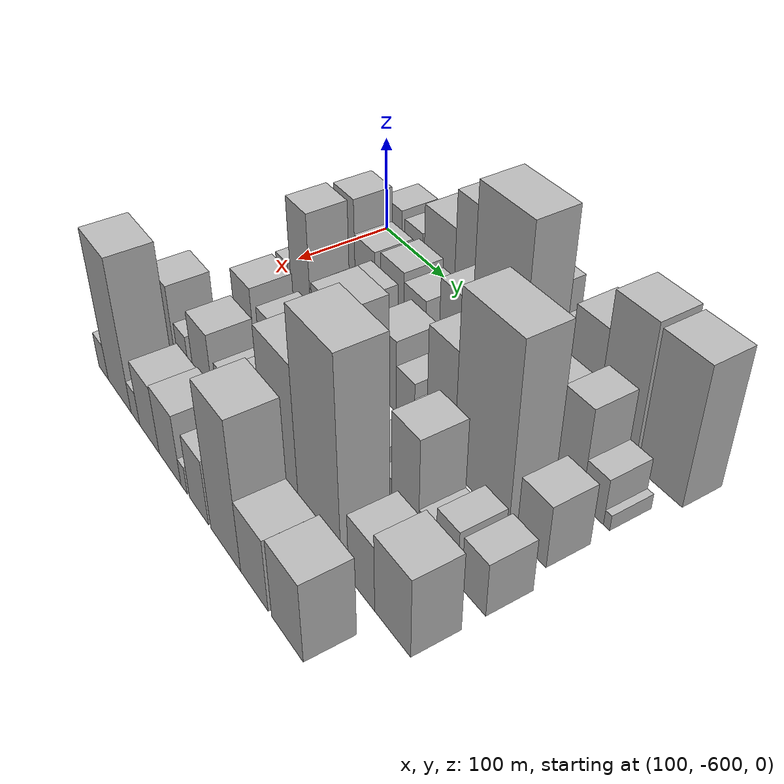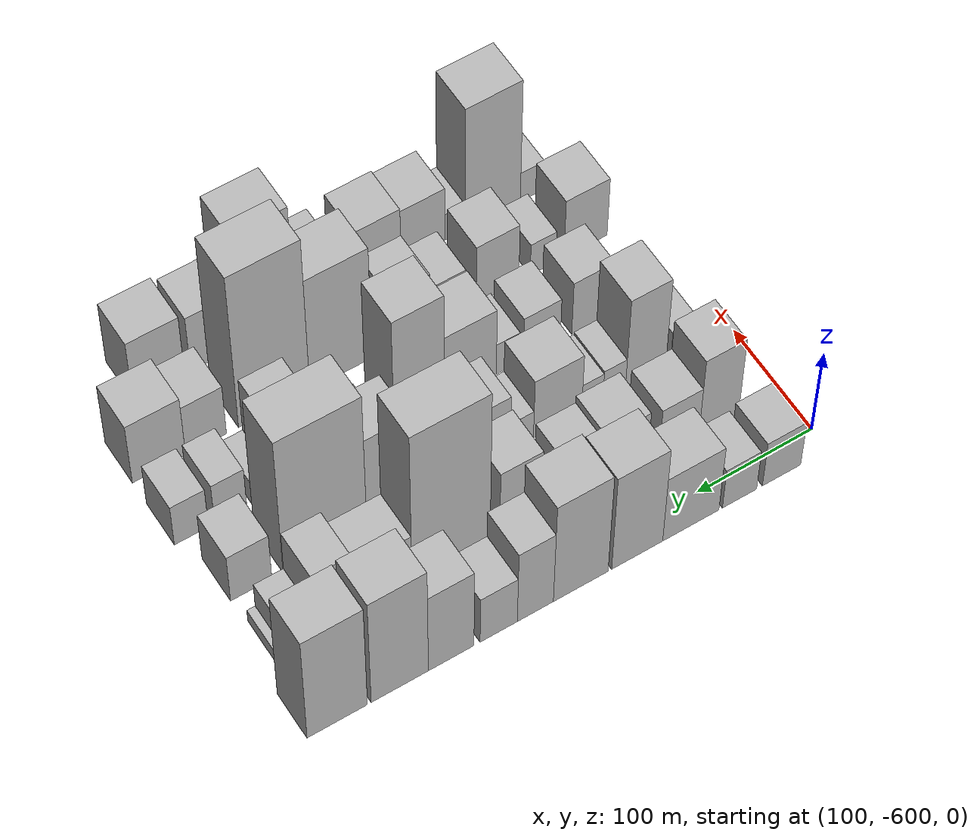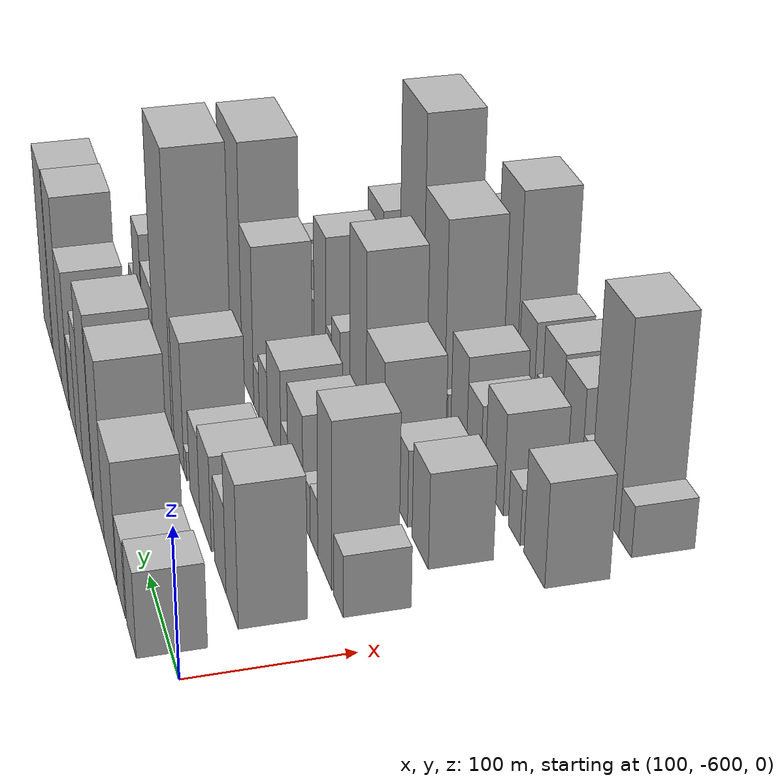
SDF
<sdf version="1.6">
 <world name="default">
  <model name="building_11">
   <static>1</static>
   <pose>100.0000 -559.1597 0 0.000000 0.000000 0.000000</pose>
   <link name="link">
    <pose>0 0 28.50 0 0 0</pose>
    <collision name="collision"><geometry><box><size>40.0000 33.1722 57.0000</size></box></geometry></collision>
    <visual name="visual">
     <cast_shadows>0</cast_shadows>
     <geometry><box><size>40.0000 33.1722 57.0000</size></box></geometry>
     <material>
      <script>
       <uri>model://HANNAS_wall/materials/scripts</uri>
       <uri>model://HANNAS_wall/materials/textures</uri>
       <name>vrc/HANNAS_wall</name>
      </script>
     </material>
    </visual>
   </link>
  </model>
  <model name="building_12">
   <static>1</static>
   <pose>100.0000 -522.8531 0 0.000000 0.000000 0.000000</pose>
   <link name="link">
    <pose>0 0 25.50 0 0 0</pose>
    <collision name="collision"><geometry><box><size>40.0000 29.4410 51.0000</size></box></geometry></collision>
    <visual name="visual">
     <cast_shadows>0</cast_shadows>
     <geometry><box><size>40.0000 29.4410 51.0000</size></box></geometry>
     <material>
      <script>
       <uri>model://HANNAS_wall/materials/scripts</uri>
       <uri>model://HANNAS_wall/materials/textures</uri>
       <name>vrc/HANNAS_wall</name>
      </script>
     </material>
    </visual>
   </link>
  </model>
  <model name="building_13">
   <static>1</static>
   <pose>100.0000 -481.1601 0 0.000000 0.000000 0.000000</pose>
   <link name="link">
    <pose>0 0 42.00 0 0 0</pose>
    <collision name="collision"><geometry><box><size>40.0000 47.9450 84.0000</size></box></geometry></collision>
    <visual name="visual">
     <cast_shadows>0</cast_shadows>
     <geometry><box><size>40.0000 47.9450 84.0000</size></box></geometry>
     <material>
      <script>
       <uri>model://HANNAS_wall/materials/scripts</uri>
       <uri>model://HANNAS_wall/materials/textures</uri>
       <name>vrc/HANNAS_wall</name>
      </script>
     </material>
    </visual>
   </link>
  </model>
  <model name="building_14">
   <static>1</static>
   <pose>100.0000 -435.6512 0 0.000000 0.000000 0.000000</pose>
   <link name="link">
    <pose>0 0 61.50 0 0 0</pose>
    <collision name="collision"><geometry><box><size>40.0000 43.0728 123.0000</size></box></geometry></collision>
    <visual name="visual">
     <cast_shadows>0</cast_shadows>
     <geometry><box><size>40.0000 43.0728 123.0000</size></box></geometry>
     <material>
      <script>
       <uri>model://HANNAS_wall/materials/scripts</uri>
       <uri>model://HANNAS_wall/materials/textures</uri>
       <name>vrc/HANNAS_wall</name>
      </script>
     </material>
    </visual>
   </link>
  </model>
  <model name="building_15">
   <static>1</static>
   <pose>100.0000 -388.2523 0 0.000000 0.000000 0.000000</pose>
   <link name="link">
    <pose>0 0 64.50 0 0 0</pose>
    <collision name="collision"><geometry><box><size>40.0000 45.7249 129.0000</size></box></geometry></collision>
    <visual name="visual">
     <cast_shadows>0</cast_shadows>
     <geometry><box><size>40.0000 45.7249 129.0000</size></box></geometry>
     <material>
      <script>
       <uri>model://HANNAS_wall/materials/scripts</uri>
       <uri>model://HANNAS_wall/materials/textures</uri>
       <name>vrc/HANNAS_wall</name>
      </script>
     </material>
    </visual>
   </link>
  </model>
  <model name="building_16">
   <static>1</static>
   <pose>100.0000 -350.4406 0 0.000000 0.000000 0.000000</pose>
   <link name="link">
    <pose>0 0 46.50 0 0 0</pose>
    <collision name="collision"><geometry><box><size>40.0000 29.8985 93.0000</size></box></geometry></collision>
    <visual name="visual">
     <cast_shadows>0</cast_shadows>
     <geometry><box><size>40.0000 29.8985 93.0000</size></box></geometry>
     <material>
      <script>
       <uri>model://HANNAS_wall/materials/scripts</uri>
       <uri>model://HANNAS_wall/materials/textures</uri>
       <name>vrc/HANNAS_wall</name>
      </script>
     </material>
    </visual>
   </link>
  </model>
  <model name="building_17">
   <static>1</static>
   <pose>100.0000 -320.1890 0 0.000000 0.000000 0.000000</pose>
   <link name="link">
    <pose>0 0 30.00 0 0 0</pose>
    <collision name="collision"><geometry><box><size>40.0000 30.6047 60.0000</size></box></geometry></collision>
    <visual name="visual">
     <cast_shadows>0</cast_shadows>
     <geometry><box><size>40.0000 30.6047 60.0000</size></box></geometry>
     <material>
      <script>
       <uri>model://HANNAS_wall/materials/scripts</uri>
       <uri>model://HANNAS_wall/materials/textures</uri>
       <name>vrc/HANNAS_wall</name>
      </script>
     </material>
    </visual>
   </link>
  </model>
  <model name="building_18">
   <static>1</static>
   <pose>100.0000 -281.3210 0 0.000000 0.000000 0.000000</pose>
   <link name="link">
    <pose>0 0 51.00 0 0 0</pose>
    <collision name="collision"><geometry><box><size>40.0000 37.1313 102.0000</size></box></geometry></collision>
    <visual name="visual">
     <cast_shadows>0</cast_shadows>
     <geometry><box><size>40.0000 37.1313 102.0000</size></box></geometry>
     <material>
      <script>
       <uri>model://HANNAS_wall/materials/scripts</uri>
       <uri>model://HANNAS_wall/materials/textures</uri>
       <name>vrc/HANNAS_wall</name>
      </script>
     </material>
    </visual>
   </link>
  </model>
  <model name="building_19">
   <static>1</static>
   <pose>100.0000 -239.6339 0 0.000000 0.000000 0.000000</pose>
   <link name="link">
    <pose>0 0 69.00 0 0 0</pose>
    <collision name="collision"><geometry><box><size>40.0000 46.2429 138.0000</size></box></geometry></collision>
    <visual name="visual">
     <cast_shadows>0</cast_shadows>
     <geometry><box><size>40.0000 46.2429 138.0000</size></box></geometry>
     <material>
      <script>
       <uri>model://HANNAS_wall/materials/scripts</uri>
       <uri>model://HANNAS_wall/materials/textures</uri>
       <name>vrc/HANNAS_wall</name>
      </script>
     </material>
    </visual>
   </link>
  </model>
  <model name="building_20">
   <static>1</static>
   <pose>100.0000 -189.3822 0 0.000000 0.000000 0.000000</pose>
   <link name="link">
    <pose>0 0 67.50 0 0 0</pose>
    <collision name="collision"><geometry><box><size>40.0000 48.2603 135.0000</size></box></geometry></collision>
    <visual name="visual">
     <cast_shadows>0</cast_shadows>
     <geometry><box><size>40.0000 48.2603 135.0000</size></box></geometry>
     <material>
      <script>
       <uri>model://HANNAS_wall/materials/scripts</uri>
       <uri>model://HANNAS_wall/materials/textures</uri>
       <name>vrc/HANNAS_wall</name>
      </script>
     </material>
    </visual>
   </link>
  </model>
  <model name="building_67">
   <static>1</static>
   <pose>160.0000 -545.8637 0 0.000000 0.000000 0.000000</pose>
   <link name="link">
    <pose>0 0 48.00 0 0 0</pose>
    <collision name="collision"><geometry><box><size>40.0000 34.5554 96.0000</size></box></geometry></collision>
    <visual name="visual">
     <cast_shadows>0</cast_shadows>
     <geometry><box><size>40.0000 34.5554 96.0000</size></box></geometry>
     <material>
      <script>
       <uri>model://HANNAS_wall/materials/scripts</uri>
       <uri>model://HANNAS_wall/materials/textures</uri>
       <name>vrc/HANNAS_wall</name>
      </script>
     </material>
    </visual>
   </link>
  </model>
  <model name="building_68">
   <static>1</static>
   <pose>160.0000 -511.3760 0 0.000000 0.000000 0.000000</pose>
   <link name="link">
    <pose>0 0 30.00 0 0 0</pose>
    <collision name="collision"><geometry><box><size>40.0000 34.4201 60.0000</size></box></geometry></collision>
    <visual name="visual">
     <cast_shadows>0</cast_shadows>
     <geometry><box><size>40.0000 34.4201 60.0000</size></box></geometry>
     <material>
      <script>
       <uri>model://HANNAS_wall/materials/scripts</uri>
       <uri>model://HANNAS_wall/materials/textures</uri>
       <name>vrc/HANNAS_wall</name>
      </script>
     </material>
    </visual>
   </link>
  </model>
  <model name="building_69">
   <static>1</static>
   <pose>160.0000 -465.6435 0 0.000000 0.000000 0.000000</pose>
   <link name="link">
    <pose>0 0 33.00 0 0 0</pose>
    <collision name="collision"><geometry><box><size>40.0000 37.0449 66.0000</size></box></geometry></collision>
    <visual name="visual">
     <cast_shadows>0</cast_shadows>
     <geometry><box><size>40.0000 37.0449 66.0000</size></box></geometry>
     <material>
      <script>
       <uri>model://HANNAS_wall/materials/scripts</uri>
       <uri>model://HANNAS_wall/materials/textures</uri>
       <name>vrc/HANNAS_wall</name>
      </script>
     </material>
    </visual>
   </link>
  </model>
  <model name="building_70">
   <static>1</static>
   <pose>160.0000 -430.4712 0 0.000000 0.000000 0.000000</pose>
   <link name="link">
    <pose>0 0 28.50 0 0 0</pose>
    <collision name="collision"><geometry><box><size>40.0000 33.2997 57.0000</size></box></geometry></collision>
    <visual name="visual">
     <cast_shadows>0</cast_shadows>
     <geometry><box><size>40.0000 33.2997 57.0000</size></box></geometry>
     <material>
      <script>
       <uri>model://HANNAS_wall/materials/scripts</uri>
       <uri>model://HANNAS_wall/materials/textures</uri>
       <name>vrc/HANNAS_wall</name>
      </script>
     </material>
    </visual>
   </link>
  </model>
  <model name="building_71">
   <static>1</static>
   <pose>160.0000 -398.9516 0 0.000000 0.000000 0.000000</pose>
   <link name="link">
    <pose>0 0 10.50 0 0 0</pose>
    <collision name="collision"><geometry><box><size>40.0000 9.7394 21.0000</size></box></geometry></collision>
    <visual name="visual">
     <cast_shadows>0</cast_shadows>
     <geometry><box><size>40.0000 9.7394 21.0000</size></box></geometry>
     <material>
      <script>
       <uri>model://HANNAS_wall/materials/scripts</uri>
       <uri>model://HANNAS_wall/materials/textures</uri>
       <name>vrc/HANNAS_wall</name>
      </script>
     </material>
    </visual>
   </link>
  </model>
  <model name="building_72">
   <static>1</static>
   <pose>160.0000 -376.5164 0 0.000000 0.000000 0.000000</pose>
   <link name="link">
    <pose>0 0 46.50 0 0 0</pose>
    <collision name="collision"><geometry><box><size>40.0000 35.1311 93.0000</size></box></geometry></collision>
    <visual name="visual">
     <cast_shadows>0</cast_shadows>
     <geometry><box><size>40.0000 35.1311 93.0000</size></box></geometry>
     <material>
      <script>
       <uri>model://HANNAS_wall/materials/scripts</uri>
       <uri>model://HANNAS_wall/materials/textures</uri>
       <name>vrc/HANNAS_wall</name>
      </script>
     </material>
    </visual>
   </link>
  </model>
  <model name="building_73">
   <static>1</static>
   <pose>160.0000 -318.7499 0 0.000000 0.000000 0.000000</pose>
   <link name="link">
    <pose>0 0 102.00 0 0 0</pose>
    <collision name="collision"><geometry><box><size>40.0000 64.4019 204.0000</size></box></geometry></collision>
    <visual name="visual">
     <cast_shadows>0</cast_shadows>
     <geometry><box><size>40.0000 64.4019 204.0000</size></box></geometry>
     <material>
      <script>
       <uri>model://HANNAS_wall/materials/scripts</uri>
       <uri>model://HANNAS_wall/materials/textures</uri>
       <name>vrc/HANNAS_wall</name>
      </script>
     </material>
    </visual>
   </link>
  </model>
  <model name="building_74">
   <static>1</static>
   <pose>160.0000 -264.3984 0 0.000000 0.000000 0.000000</pose>
   <link name="link">
    <pose>0 0 37.50 0 0 0</pose>
    <collision name="collision"><geometry><box><size>40.0000 44.3011 75.0000</size></box></geometry></collision>
    <visual name="visual">
     <cast_shadows>0</cast_shadows>
     <geometry><box><size>40.0000 44.3011 75.0000</size></box></geometry>
     <material>
      <script>
       <uri>model://HANNAS_wall/materials/scripts</uri>
       <uri>model://HANNAS_wall/materials/textures</uri>
       <name>vrc/HANNAS_wall</name>
      </script>
     </material>
    </visual>
   </link>
  </model>
  <model name="building_75">
   <static>1</static>
   <pose>160.0000 -223.4162 0 0.000000 0.000000 0.000000</pose>
   <link name="link">
    <pose>0 0 46.50 0 0 0</pose>
    <collision name="collision"><geometry><box><size>40.0000 31.6633 93.0000</size></box></geometry></collision>
    <visual name="visual">
     <cast_shadows>0</cast_shadows>
     <geometry><box><size>40.0000 31.6633 93.0000</size></box></geometry>
     <material>
      <script>
       <uri>model://HANNAS_wall/materials/scripts</uri>
       <uri>model://HANNAS_wall/materials/textures</uri>
       <name>vrc/HANNAS_wall</name>
      </script>
     </material>
    </visual>
   </link>
  </model>
  <model name="building_76">
   <static>1</static>
   <pose>160.0000 -195.5586 0 0.000000 0.000000 0.000000</pose>
   <link name="link">
    <pose>0 0 22.50 0 0 0</pose>
    <collision name="collision"><geometry><box><size>40.0000 24.0520 45.0000</size></box></geometry></collision>
    <visual name="visual">
     <cast_shadows>0</cast_shadows>
     <geometry><box><size>40.0000 24.0520 45.0000</size></box></geometry>
     <material>
      <script>
       <uri>model://HANNAS_wall/materials/scripts</uri>
       <uri>model://HANNAS_wall/materials/textures</uri>
       <name>vrc/HANNAS_wall</name>
      </script>
     </material>
    </visual>
   </link>
  </model>
  <model name="building_77">
   <static>1</static>
   <pose>160.0000 -180.1423 0 0.000000 0.000000 0.000000</pose>
   <link name="link">
    <pose>0 0 7.50 0 0 0</pose>
    <collision name="collision"><geometry><box><size>40.0000 6.7806 15.0000</size></box></geometry></collision>
    <visual name="visual">
     <cast_shadows>0</cast_shadows>
     <geometry><box><size>40.0000 6.7806 15.0000</size></box></geometry>
     <material>
      <script>
       <uri>model://HANNAS_wall/materials/scripts</uri>
       <uri>model://HANNAS_wall/materials/textures</uri>
       <name>vrc/HANNAS_wall</name>
      </script>
     </material>
    </visual>
   </link>
  </model>
  <model name="building_122">
   <static>1</static>
   <pose>220.0000 -555.2893 0 0.000000 0.000000 0.000000</pose>
   <link name="link">
    <pose>0 0 21.00 0 0 0</pose>
    <collision name="collision"><geometry><box><size>40.0000 22.9541 42.0000</size></box></geometry></collision>
    <visual name="visual">
     <cast_shadows>0</cast_shadows>
     <geometry><box><size>40.0000 22.9541 42.0000</size></box></geometry>
     <material>
      <script>
       <uri>model://HANNAS_wall/materials/scripts</uri>
       <uri>model://HANNAS_wall/materials/textures</uri>
       <name>vrc/HANNAS_wall</name>
      </script>
     </material>
    </visual>
   </link>
  </model>
  <model name="building_123">
   <static>1</static>
   <pose>220.0000 -522.3479 0 0.000000 0.000000 0.000000</pose>
   <link name="link">
    <pose>0 0 57.00 0 0 0</pose>
    <collision name="collision"><geometry><box><size>40.0000 34.9288 114.0000</size></box></geometry></collision>
    <visual name="visual">
     <cast_shadows>0</cast_shadows>
     <geometry><box><size>40.0000 34.9288 114.0000</size></box></geometry>
     <material>
      <script>
       <uri>model://HANNAS_wall/materials/scripts</uri>
       <uri>model://HANNAS_wall/materials/textures</uri>
       <name>vrc/HANNAS_wall</name>
      </script>
     </material>
    </visual>
   </link>
  </model>
  <model name="building_124">
   <static>1</static>
   <pose>220.0000 -495.1035 0 0.000000 0.000000 0.000000</pose>
   <link name="link">
    <pose>0 0 19.50 0 0 0</pose>
    <collision name="collision"><geometry><box><size>40.0000 19.5599 39.0000</size></box></geometry></collision>
    <visual name="visual">
     <cast_shadows>0</cast_shadows>
     <geometry><box><size>40.0000 19.5599 39.0000</size></box></geometry>
     <material>
      <script>
       <uri>model://HANNAS_wall/materials/scripts</uri>
       <uri>model://HANNAS_wall/materials/textures</uri>
       <name>vrc/HANNAS_wall</name>
      </script>
     </material>
    </visual>
   </link>
  </model>
  <model name="building_125">
   <static>1</static>
   <pose>220.0000 -476.1760 0 0.000000 0.000000 0.000000</pose>
   <link name="link">
    <pose>0 0 18.00 0 0 0</pose>
    <collision name="collision"><geometry><box><size>40.0000 18.2951 36.0000</size></box></geometry></collision>
    <visual name="visual">
     <cast_shadows>0</cast_shadows>
     <geometry><box><size>40.0000 18.2951 36.0000</size></box></geometry>
     <material>
      <script>
       <uri>model://HANNAS_wall/materials/scripts</uri>
       <uri>model://HANNAS_wall/materials/textures</uri>
       <name>vrc/HANNAS_wall</name>
      </script>
     </material>
    </visual>
   </link>
  </model>
  <model name="building_126">
   <static>1</static>
   <pose>220.0000 -446.3758 0 0.000000 0.000000 0.000000</pose>
   <link name="link">
    <pose>0 0 37.50 0 0 0</pose>
    <collision name="collision"><geometry><box><size>40.0000 41.3053 75.0000</size></box></geometry></collision>
    <visual name="visual">
     <cast_shadows>0</cast_shadows>
     <geometry><box><size>40.0000 41.3053 75.0000</size></box></geometry>
     <material>
      <script>
       <uri>model://HANNAS_wall/materials/scripts</uri>
       <uri>model://HANNAS_wall/materials/textures</uri>
       <name>vrc/HANNAS_wall</name>
      </script>
     </material>
    </visual>
   </link>
  </model>
  <model name="building_127">
   <static>1</static>
   <pose>220.0000 -415.9411 0 0.000000 0.000000 0.000000</pose>
   <link name="link">
    <pose>0 0 18.00 0 0 0</pose>
    <collision name="collision"><geometry><box><size>40.0000 19.5641 36.0000</size></box></geometry></collision>
    <visual name="visual">
     <cast_shadows>0</cast_shadows>
     <geometry><box><size>40.0000 19.5641 36.0000</size></box></geometry>
     <material>
      <script>
       <uri>model://HANNAS_wall/materials/scripts</uri>
       <uri>model://HANNAS_wall/materials/textures</uri>
       <name>vrc/HANNAS_wall</name>
      </script>
     </material>
    </visual>
   </link>
  </model>
  <model name="building_128">
   <static>1</static>
   <pose>220.0000 -386.1745 0 0.000000 0.000000 0.000000</pose>
   <link name="link">
    <pose>0 0 36.00 0 0 0</pose>
    <collision name="collision"><geometry><box><size>40.0000 39.9691 72.0000</size></box></geometry></collision>
    <visual name="visual">
     <cast_shadows>0</cast_shadows>
     <geometry><box><size>40.0000 39.9691 72.0000</size></box></geometry>
     <material>
      <script>
       <uri>model://HANNAS_wall/materials/scripts</uri>
       <uri>model://HANNAS_wall/materials/textures</uri>
       <name>vrc/HANNAS_wall</name>
      </script>
     </material>
    </visual>
   </link>
  </model>
  <model name="building_129">
   <static>1</static>
   <pose>220.0000 -353.1273 0 0.000000 0.000000 0.000000</pose>
   <link name="link">
    <pose>0 0 24.00 0 0 0</pose>
    <collision name="collision"><geometry><box><size>40.0000 26.1254 48.0000</size></box></geometry></collision>
    <visual name="visual">
     <cast_shadows>0</cast_shadows>
     <geometry><box><size>40.0000 26.1254 48.0000</size></box></geometry>
     <material>
      <script>
       <uri>model://HANNAS_wall/materials/scripts</uri>
       <uri>model://HANNAS_wall/materials/textures</uri>
       <name>vrc/HANNAS_wall</name>
      </script>
     </material>
    </visual>
   </link>
  </model>
  <model name="building_130">
   <static>1</static>
   <pose>220.0000 -331.5957 0 0.000000 0.000000 0.000000</pose>
   <link name="link">
    <pose>0 0 16.50 0 0 0</pose>
    <collision name="collision"><geometry><box><size>40.0000 16.9378 33.0000</size></box></geometry></collision>
    <visual name="visual">
     <cast_shadows>0</cast_shadows>
     <geometry><box><size>40.0000 16.9378 33.0000</size></box></geometry>
     <material>
      <script>
       <uri>model://HANNAS_wall/materials/scripts</uri>
       <uri>model://HANNAS_wall/materials/textures</uri>
       <name>vrc/HANNAS_wall</name>
      </script>
     </material>
    </visual>
   </link>
  </model>
  <model name="building_131">
   <static>1</static>
   <pose>220.0000 -304.5180 0 0.000000 0.000000 0.000000</pose>
   <link name="link">
    <pose>0 0 58.50 0 0 0</pose>
    <collision name="collision"><geometry><box><size>40.0000 37.2175 117.0000</size></box></geometry></collision>
    <visual name="visual">
     <cast_shadows>0</cast_shadows>
     <geometry><box><size>40.0000 37.2175 117.0000</size></box></geometry>
     <material>
      <script>
       <uri>model://HANNAS_wall/materials/scripts</uri>
       <uri>model://HANNAS_wall/materials/textures</uri>
       <name>vrc/HANNAS_wall</name>
      </script>
     </material>
    </visual>
   </link>
  </model>
  <model name="building_132">
   <static>1</static>
   <pose>220.0000 -251.4537 0 0.000000 0.000000 0.000000</pose>
   <link name="link">
    <pose>0 0 87.00 0 0 0</pose>
    <collision name="collision"><geometry><box><size>40.0000 68.9112 174.0000</size></box></geometry></collision>
    <visual name="visual">
     <cast_shadows>0</cast_shadows>
     <geometry><box><size>40.0000 68.9112 174.0000</size></box></geometry>
     <material>
      <script>
       <uri>model://HANNAS_wall/materials/scripts</uri>
       <uri>model://HANNAS_wall/materials/textures</uri>
       <name>vrc/HANNAS_wall</name>
      </script>
     </material>
    </visual>
   </link>
  </model>
  <model name="building_133">
   <static>1</static>
   <pose>220.0000 -191.2462 0 0.000000 0.000000 0.000000</pose>
   <link name="link">
    <pose>0 0 30.00 0 0 0</pose>
    <collision name="collision"><geometry><box><size>40.0000 33.5037 60.0000</size></box></geometry></collision>
    <visual name="visual">
     <cast_shadows>0</cast_shadows>
     <geometry><box><size>40.0000 33.5037 60.0000</size></box></geometry>
     <material>
      <script>
       <uri>model://HANNAS_wall/materials/scripts</uri>
       <uri>model://HANNAS_wall/materials/textures</uri>
       <name>vrc/HANNAS_wall</name>
      </script>
     </material>
    </visual>
   </link>
  </model>
  <model name="building_179">
   <static>1</static>
   <pose>280.0000 -515.1549 0 0.000000 0.000000 0.000000</pose>
   <link name="link">
    <pose>0 0 33.00 0 0 0</pose>
    <collision name="collision"><geometry><box><size>40.0000 35.4104 66.0000</size></box></geometry></collision>
    <visual name="visual">
     <cast_shadows>0</cast_shadows>
     <geometry><box><size>40.0000 35.4104 66.0000</size></box></geometry>
     <material>
      <script>
       <uri>model://HANNAS_wall/materials/scripts</uri>
       <uri>model://HANNAS_wall/materials/textures</uri>
       <name>vrc/HANNAS_wall</name>
      </script>
     </material>
    </visual>
   </link>
  </model>
  <model name="building_180">
   <static>1</static>
   <pose>280.0000 -471.4115 0 0.000000 0.000000 0.000000</pose>
   <link name="link">
    <pose>0 0 27.00 0 0 0</pose>
    <collision name="collision"><geometry><box><size>40.0000 32.0764 54.0000</size></box></geometry></collision>
    <visual name="visual">
     <cast_shadows>0</cast_shadows>
     <geometry><box><size>40.0000 32.0764 54.0000</size></box></geometry>
     <material>
      <script>
       <uri>model://HANNAS_wall/materials/scripts</uri>
       <uri>model://HANNAS_wall/materials/textures</uri>
       <name>vrc/HANNAS_wall</name>
      </script>
     </material>
    </visual>
   </link>
  </model>
  <model name="building_181">
   <static>1</static>
   <pose>280.0000 -442.2535 0 0.000000 0.000000 0.000000</pose>
   <link name="link">
    <pose>0 0 19.50 0 0 0</pose>
    <collision name="collision"><geometry><box><size>40.0000 20.2397 39.0000</size></box></geometry></collision>
    <visual name="visual">
     <cast_shadows>0</cast_shadows>
     <geometry><box><size>40.0000 20.2397 39.0000</size></box></geometry>
     <material>
      <script>
       <uri>model://HANNAS_wall/materials/scripts</uri>
       <uri>model://HANNAS_wall/materials/textures</uri>
       <name>vrc/HANNAS_wall</name>
      </script>
     </material>
    </visual>
   </link>
  </model>
  <model name="building_182">
   <static>1</static>
   <pose>280.0000 -409.9814 0 0.000000 0.000000 0.000000</pose>
   <link name="link">
    <pose>0 0 42.00 0 0 0</pose>
    <collision name="collision"><geometry><box><size>40.0000 44.3043 84.0000</size></box></geometry></collision>
    <visual name="visual">
     <cast_shadows>0</cast_shadows>
     <geometry><box><size>40.0000 44.3043 84.0000</size></box></geometry>
     <material>
      <script>
       <uri>model://HANNAS_wall/materials/scripts</uri>
       <uri>model://HANNAS_wall/materials/textures</uri>
       <name>vrc/HANNAS_wall</name>
      </script>
     </material>
    </visual>
   </link>
  </model>
  <model name="building_183">
   <static>1</static>
   <pose>280.0000 -366.4460 0 0.000000 0.000000 0.000000</pose>
   <link name="link">
    <pose>0 0 69.00 0 0 0</pose>
    <collision name="collision"><geometry><box><size>40.0000 42.7665 138.0000</size></box></geometry></collision>
    <visual name="visual">
     <cast_shadows>0</cast_shadows>
     <geometry><box><size>40.0000 42.7665 138.0000</size></box></geometry>
     <material>
      <script>
       <uri>model://HANNAS_wall/materials/scripts</uri>
       <uri>model://HANNAS_wall/materials/textures</uri>
       <name>vrc/HANNAS_wall</name>
      </script>
     </material>
    </visual>
   </link>
  </model>
  <model name="building_184">
   <static>1</static>
   <pose>280.0000 -331.6238 0 0.000000 0.000000 0.000000</pose>
   <link name="link">
    <pose>0 0 7.50 0 0 0</pose>
    <collision name="collision"><geometry><box><size>40.0000 6.8779 15.0000</size></box></geometry></collision>
    <visual name="visual">
     <cast_shadows>0</cast_shadows>
     <geometry><box><size>40.0000 6.8779 15.0000</size></box></geometry>
     <material>
      <script>
       <uri>model://HANNAS_wall/materials/scripts</uri>
       <uri>model://HANNAS_wall/materials/textures</uri>
       <name>vrc/HANNAS_wall</name>
      </script>
     </material>
    </visual>
   </link>
  </model>
  <model name="building_185">
   <static>1</static>
   <pose>280.0000 -307.0592 0 0.000000 0.000000 0.000000</pose>
   <link name="link">
    <pose>0 0 22.50 0 0 0</pose>
    <collision name="collision"><geometry><box><size>40.0000 24.2513 45.0000</size></box></geometry></collision>
    <visual name="visual">
     <cast_shadows>0</cast_shadows>
     <geometry><box><size>40.0000 24.2513 45.0000</size></box></geometry>
     <material>
      <script>
       <uri>model://HANNAS_wall/materials/scripts</uri>
       <uri>model://HANNAS_wall/materials/textures</uri>
       <name>vrc/HANNAS_wall</name>
      </script>
     </material>
    </visual>
   </link>
  </model>
  <model name="building_186">
   <static>1</static>
   <pose>280.0000 -287.2792 0 0.000000 0.000000 0.000000</pose>
   <link name="link">
    <pose>0 0 15.00 0 0 0</pose>
    <collision name="collision"><geometry><box><size>40.0000 15.3089 30.0000</size></box></geometry></collision>
    <visual name="visual">
     <cast_shadows>0</cast_shadows>
     <geometry><box><size>40.0000 15.3089 30.0000</size></box></geometry>
     <material>
      <script>
       <uri>model://HANNAS_wall/materials/scripts</uri>
       <uri>model://HANNAS_wall/materials/textures</uri>
       <name>vrc/HANNAS_wall</name>
      </script>
     </material>
    </visual>
   </link>
  </model>
  <model name="building_187">
   <static>1</static>
   <pose>280.0000 -261.8778 0 0.000000 0.000000 0.000000</pose>
   <link name="link">
    <pose>0 0 48.00 0 0 0</pose>
    <collision name="collision"><geometry><box><size>40.0000 35.4940 96.0000</size></box></geometry></collision>
    <visual name="visual">
     <cast_shadows>0</cast_shadows>
     <geometry><box><size>40.0000 35.4940 96.0000</size></box></geometry>
     <material>
      <script>
       <uri>model://HANNAS_wall/materials/scripts</uri>
       <uri>model://HANNAS_wall/materials/textures</uri>
       <name>vrc/HANNAS_wall</name>
      </script>
     </material>
    </visual>
   </link>
  </model>
  <model name="building_188">
   <static>1</static>
   <pose>280.0000 -235.3799 0 0.000000 0.000000 0.000000</pose>
   <link name="link">
    <pose>0 0 15.00 0 0 0</pose>
    <collision name="collision"><geometry><box><size>40.0000 17.5018 30.0000</size></box></geometry></collision>
    <visual name="visual">
     <cast_shadows>0</cast_shadows>
     <geometry><box><size>40.0000 17.5018 30.0000</size></box></geometry>
     <material>
      <script>
       <uri>model://HANNAS_wall/materials/scripts</uri>
       <uri>model://HANNAS_wall/materials/textures</uri>
       <name>vrc/HANNAS_wall</name>
      </script>
     </material>
    </visual>
   </link>
  </model>
  <model name="building_189">
   <static>1</static>
   <pose>280.0000 -209.4340 0 0.000000 0.000000 0.000000</pose>
   <link name="link">
    <pose>0 0 25.50 0 0 0</pose>
    <collision name="collision"><geometry><box><size>40.0000 26.3899 51.0000</size></box></geometry></collision>
    <visual name="visual">
     <cast_shadows>0</cast_shadows>
     <geometry><box><size>40.0000 26.3899 51.0000</size></box></geometry>
     <material>
      <script>
       <uri>model://HANNAS_wall/materials/scripts</uri>
       <uri>model://HANNAS_wall/materials/textures</uri>
       <name>vrc/HANNAS_wall</name>
      </script>
     </material>
    </visual>
   </link>
  </model>
  <model name="building_190">
   <static>1</static>
   <pose>280.0000 -177.3579 0 0.000000 0.000000 0.000000</pose>
   <link name="link">
    <pose>0 0 25.50 0 0 0</pose>
    <collision name="collision"><geometry><box><size>40.0000 27.7624 51.0000</size></box></geometry></collision>
    <visual name="visual">
     <cast_shadows>0</cast_shadows>
     <geometry><box><size>40.0000 27.7624 51.0000</size></box></geometry>
     <material>
      <script>
       <uri>model://HANNAS_wall/materials/scripts</uri>
       <uri>model://HANNAS_wall/materials/textures</uri>
       <name>vrc/HANNAS_wall</name>
      </script>
     </material>
    </visual>
   </link>
  </model>
  <model name="building_237">
   <static>1</static>
   <pose>340.0000 -548.6157 0 0.000000 0.000000 0.000000</pose>
   <link name="link">
    <pose>0 0 36.00 0 0 0</pose>
    <collision name="collision"><geometry><box><size>40.0000 38.1792 72.0000</size></box></geometry></collision>
    <visual name="visual">
     <cast_shadows>0</cast_shadows>
     <geometry><box><size>40.0000 38.1792 72.0000</size></box></geometry>
     <material>
      <script>
       <uri>model://HANNAS_wall/materials/scripts</uri>
       <uri>model://HANNAS_wall/materials/textures</uri>
       <name>vrc/HANNAS_wall</name>
      </script>
     </material>
    </visual>
   </link>
  </model>
  <model name="building_238">
   <static>1</static>
   <pose>340.0000 -511.1821 0 0.000000 0.000000 0.000000</pose>
   <link name="link">
    <pose>0 0 19.50 0 0 0</pose>
    <collision name="collision"><geometry><box><size>40.0000 22.6880 39.0000</size></box></geometry></collision>
    <visual name="visual">
     <cast_shadows>0</cast_shadows>
     <geometry><box><size>40.0000 22.6880 39.0000</size></box></geometry>
     <material>
      <script>
       <uri>model://HANNAS_wall/materials/scripts</uri>
       <uri>model://HANNAS_wall/materials/textures</uri>
       <name>vrc/HANNAS_wall</name>
      </script>
     </material>
    </visual>
   </link>
  </model>
  <model name="building_239">
   <static>1</static>
   <pose>340.0000 -471.2604 0 0.000000 0.000000 0.000000</pose>
   <link name="link">
    <pose>0 0 36.00 0 0 0</pose>
    <collision name="collision"><geometry><box><size>40.0000 37.1554 72.0000</size></box></geometry></collision>
    <visual name="visual">
     <cast_shadows>0</cast_shadows>
     <geometry><box><size>40.0000 37.1554 72.0000</size></box></geometry>
     <material>
      <script>
       <uri>model://HANNAS_wall/materials/scripts</uri>
       <uri>model://HANNAS_wall/materials/textures</uri>
       <name>vrc/HANNAS_wall</name>
      </script>
     </material>
    </visual>
   </link>
  </model>
  <model name="building_240">
   <static>1</static>
   <pose>340.0000 -428.4277 0 0.000000 0.000000 0.000000</pose>
   <link name="link">
    <pose>0 0 25.50 0 0 0</pose>
    <collision name="collision"><geometry><box><size>40.0000 30.5100 51.0000</size></box></geometry></collision>
    <visual name="visual">
     <cast_shadows>0</cast_shadows>
     <geometry><box><size>40.0000 30.5100 51.0000</size></box></geometry>
     <material>
      <script>
       <uri>model://HANNAS_wall/materials/scripts</uri>
       <uri>model://HANNAS_wall/materials/textures</uri>
       <name>vrc/HANNAS_wall</name>
      </script>
     </material>
    </visual>
   </link>
  </model>
  <model name="building_241">
   <static>1</static>
   <pose>340.0000 -395.6206 0 0.000000 0.000000 0.000000</pose>
   <link name="link">
    <pose>0 0 34.50 0 0 0</pose>
    <collision name="collision"><geometry><box><size>40.0000 35.1043 69.0000</size></box></geometry></collision>
    <visual name="visual">
     <cast_shadows>0</cast_shadows>
     <geometry><box><size>40.0000 35.1043 69.0000</size></box></geometry>
     <material>
      <script>
       <uri>model://HANNAS_wall/materials/scripts</uri>
       <uri>model://HANNAS_wall/materials/textures</uri>
       <name>vrc/HANNAS_wall</name>
      </script>
     </material>
    </visual>
   </link>
  </model>
  <model name="building_242">
   <static>1</static>
   <pose>340.0000 -367.0390 0 0.000000 0.000000 0.000000</pose>
   <link name="link">
    <pose>0 0 9.00 0 0 0</pose>
    <collision name="collision"><geometry><box><size>40.0000 8.0589 18.0000</size></box></geometry></collision>
    <visual name="visual">
     <cast_shadows>0</cast_shadows>
     <geometry><box><size>40.0000 8.0589 18.0000</size></box></geometry>
     <material>
      <script>
       <uri>model://HANNAS_wall/materials/scripts</uri>
       <uri>model://HANNAS_wall/materials/textures</uri>
       <name>vrc/HANNAS_wall</name>
      </script>
     </material>
    </visual>
   </link>
  </model>
  <model name="building_243">
   <static>1</static>
   <pose>340.0000 -336.7149 0 0.000000 0.000000 0.000000</pose>
   <link name="link">
    <pose>0 0 70.50 0 0 0</pose>
    <collision name="collision"><geometry><box><size>40.0000 52.5893 141.0000</size></box></geometry></collision>
    <visual name="visual">
     <cast_shadows>0</cast_shadows>
     <geometry><box><size>40.0000 52.5893 141.0000</size></box></geometry>
     <material>
      <script>
       <uri>model://HANNAS_wall/materials/scripts</uri>
       <uri>model://HANNAS_wall/materials/textures</uri>
       <name>vrc/HANNAS_wall</name>
      </script>
     </material>
    </visual>
   </link>
  </model>
  <model name="building_244">
   <static>1</static>
   <pose>340.0000 -280.5516 0 0.000000 0.000000 0.000000</pose>
   <link name="link">
    <pose>0 0 96.00 0 0 0</pose>
    <collision name="collision"><geometry><box><size>40.0000 59.7372 192.0000</size></box></geometry></collision>
    <visual name="visual">
     <cast_shadows>0</cast_shadows>
     <geometry><box><size>40.0000 59.7372 192.0000</size></box></geometry>
     <material>
      <script>
       <uri>model://HANNAS_wall/materials/scripts</uri>
       <uri>model://HANNAS_wall/materials/textures</uri>
       <name>vrc/HANNAS_wall</name>
      </script>
     </material>
    </visual>
   </link>
  </model>
  <model name="building_245">
   <static>1</static>
   <pose>340.0000 -223.8176 0 0.000000 0.000000 0.000000</pose>
   <link name="link">
    <pose>0 0 31.50 0 0 0</pose>
    <collision name="collision"><geometry><box><size>40.0000 33.7309 63.0000</size></box></geometry></collision>
    <visual name="visual">
     <cast_shadows>0</cast_shadows>
     <geometry><box><size>40.0000 33.7309 63.0000</size></box></geometry>
     <material>
      <script>
       <uri>model://HANNAS_wall/materials/scripts</uri>
       <uri>model://HANNAS_wall/materials/textures</uri>
       <name>vrc/HANNAS_wall</name>
      </script>
     </material>
    </visual>
   </link>
  </model>
  <model name="building_246">
   <static>1</static>
   <pose>340.0000 -185.0694 0 0.000000 0.000000 0.000000</pose>
   <link name="link">
    <pose>0 0 37.50 0 0 0</pose>
    <collision name="collision"><geometry><box><size>40.0000 43.7655 75.0000</size></box></geometry></collision>
    <visual name="visual">
     <cast_shadows>0</cast_shadows>
     <geometry><box><size>40.0000 43.7655 75.0000</size></box></geometry>
     <material>
      <script>
       <uri>model://HANNAS_wall/materials/scripts</uri>
       <uri>model://HANNAS_wall/materials/textures</uri>
       <name>vrc/HANNAS_wall</name>
      </script>
     </material>
    </visual>
   </link>
  </model>
  <model name="building_287">
   <static>1</static>
   <pose>400.0000 -539.9291 0 0.000000 0.000000 0.000000</pose>
   <link name="link">
    <pose>0 0 18.00 0 0 0</pose>
    <collision name="collision"><geometry><box><size>40.0000 21.0735 36.0000</size></box></geometry></collision>
    <visual name="visual">
     <cast_shadows>0</cast_shadows>
     <geometry><box><size>40.0000 21.0735 36.0000</size></box></geometry>
     <material>
      <script>
       <uri>model://HANNAS_wall/materials/scripts</uri>
       <uri>model://HANNAS_wall/materials/textures</uri>
       <name>vrc/HANNAS_wall</name>
      </script>
     </material>
    </visual>
   </link>
  </model>
  <model name="building_288">
   <static>1</static>
   <pose>400.0000 -504.9818 0 0.000000 0.000000 0.000000</pose>
   <link name="link">
    <pose>0 0 75.00 0 0 0</pose>
    <collision name="collision"><geometry><box><size>40.0000 48.8210 150.0000</size></box></geometry></collision>
    <visual name="visual">
     <cast_shadows>0</cast_shadows>
     <geometry><box><size>40.0000 48.8210 150.0000</size></box></geometry>
     <material>
      <script>
       <uri>model://HANNAS_wall/materials/scripts</uri>
       <uri>model://HANNAS_wall/materials/textures</uri>
       <name>vrc/HANNAS_wall</name>
      </script>
     </material>
    </visual>
   </link>
  </model>
  <model name="building_289">
   <static>1</static>
   <pose>400.0000 -471.7902 0 0.000000 0.000000 0.000000</pose>
   <link name="link">
    <pose>0 0 16.50 0 0 0</pose>
    <collision name="collision"><geometry><box><size>40.0000 17.5622 33.0000</size></box></geometry></collision>
    <visual name="visual">
     <cast_shadows>0</cast_shadows>
     <geometry><box><size>40.0000 17.5622 33.0000</size></box></geometry>
     <material>
      <script>
       <uri>model://HANNAS_wall/materials/scripts</uri>
       <uri>model://HANNAS_wall/materials/textures</uri>
       <name>vrc/HANNAS_wall</name>
      </script>
     </material>
    </visual>
   </link>
  </model>
  <model name="building_290">
   <static>1</static>
   <pose>400.0000 -443.8399 0 0.000000 0.000000 0.000000</pose>
   <link name="link">
    <pose>0 0 33.00 0 0 0</pose>
    <collision name="collision"><geometry><box><size>40.0000 38.3384 66.0000</size></box></geometry></collision>
    <visual name="visual">
     <cast_shadows>0</cast_shadows>
     <geometry><box><size>40.0000 38.3384 66.0000</size></box></geometry>
     <material>
      <script>
       <uri>model://HANNAS_wall/materials/scripts</uri>
       <uri>model://HANNAS_wall/materials/textures</uri>
       <name>vrc/HANNAS_wall</name>
      </script>
     </material>
    </visual>
   </link>
  </model>
  <model name="building_291">
   <static>1</static>
   <pose>400.0000 -404.6809 0 0.000000 0.000000 0.000000</pose>
   <link name="link">
    <pose>0 0 34.50 0 0 0</pose>
    <collision name="collision"><geometry><box><size>40.0000 39.9795 69.0000</size></box></geometry></collision>
    <visual name="visual">
     <cast_shadows>0</cast_shadows>
     <geometry><box><size>40.0000 39.9795 69.0000</size></box></geometry>
     <material>
      <script>
       <uri>model://HANNAS_wall/materials/scripts</uri>
       <uri>model://HANNAS_wall/materials/textures</uri>
       <name>vrc/HANNAS_wall</name>
      </script>
     </material>
    </visual>
   </link>
  </model>
  <model name="building_292">
   <static>1</static>
   <pose>400.0000 -379.0951 0 0.000000 0.000000 0.000000</pose>
   <link name="link">
    <pose>0 0 13.50 0 0 0</pose>
    <collision name="collision"><geometry><box><size>40.0000 11.1920 27.0000</size></box></geometry></collision>
    <visual name="visual">
     <cast_shadows>0</cast_shadows>
     <geometry><box><size>40.0000 11.1920 27.0000</size></box></geometry>
     <material>
      <script>
       <uri>model://HANNAS_wall/materials/scripts</uri>
       <uri>model://HANNAS_wall/materials/textures</uri>
       <name>vrc/HANNAS_wall</name>
      </script>
     </material>
    </visual>
   </link>
  </model>
  <model name="building_293">
   <static>1</static>
   <pose>400.0000 -353.3595 0 0.000000 0.000000 0.000000</pose>
   <link name="link">
    <pose>0 0 31.50 0 0 0</pose>
    <collision name="collision"><geometry><box><size>40.0000 32.2793 63.0000</size></box></geometry></collision>
    <visual name="visual">
     <cast_shadows>0</cast_shadows>
     <geometry><box><size>40.0000 32.2793 63.0000</size></box></geometry>
     <material>
      <script>
       <uri>model://HANNAS_wall/materials/scripts</uri>
       <uri>model://HANNAS_wall/materials/textures</uri>
       <name>vrc/HANNAS_wall</name>
      </script>
     </material>
    </visual>
   </link>
  </model>
  <model name="building_294">
   <static>1</static>
   <pose>400.0000 -309.4893 0 0.000000 0.000000 0.000000</pose>
   <link name="link">
    <pose>0 0 70.50 0 0 0</pose>
    <collision name="collision"><geometry><box><size>40.0000 47.4611 141.0000</size></box></geometry></collision>
    <visual name="visual">
     <cast_shadows>0</cast_shadows>
     <geometry><box><size>40.0000 47.4611 141.0000</size></box></geometry>
     <material>
      <script>
       <uri>model://HANNAS_wall/materials/scripts</uri>
       <uri>model://HANNAS_wall/materials/textures</uri>
       <name>vrc/HANNAS_wall</name>
      </script>
     </material>
    </visual>
   </link>
  </model>
  <model name="building_295">
   <static>1</static>
   <pose>400.0000 -265.5201 0 0.000000 0.000000 0.000000</pose>
   <link name="link">
    <pose>0 0 34.50 0 0 0</pose>
    <collision name="collision"><geometry><box><size>40.0000 40.4773 69.0000</size></box></geometry></collision>
    <visual name="visual">
     <cast_shadows>0</cast_shadows>
     <geometry><box><size>40.0000 40.4773 69.0000</size></box></geometry>
     <material>
      <script>
       <uri>model://HANNAS_wall/materials/scripts</uri>
       <uri>model://HANNAS_wall/materials/textures</uri>
       <name>vrc/HANNAS_wall</name>
      </script>
     </material>
    </visual>
   </link>
  </model>
  <model name="building_296">
   <static>1</static>
   <pose>400.0000 -218.7302 0 0.000000 0.000000 0.000000</pose>
   <link name="link">
    <pose>0 0 37.50 0 0 0</pose>
    <collision name="collision"><geometry><box><size>40.0000 43.1025 75.0000</size></box></geometry></collision>
    <visual name="visual">
     <cast_shadows>0</cast_shadows>
     <geometry><box><size>40.0000 43.1025 75.0000</size></box></geometry>
     <material>
      <script>
       <uri>model://HANNAS_wall/materials/scripts</uri>
       <uri>model://HANNAS_wall/materials/textures</uri>
       <name>vrc/HANNAS_wall</name>
      </script>
     </material>
    </visual>
   </link>
  </model>
 </world>
</sdf>
